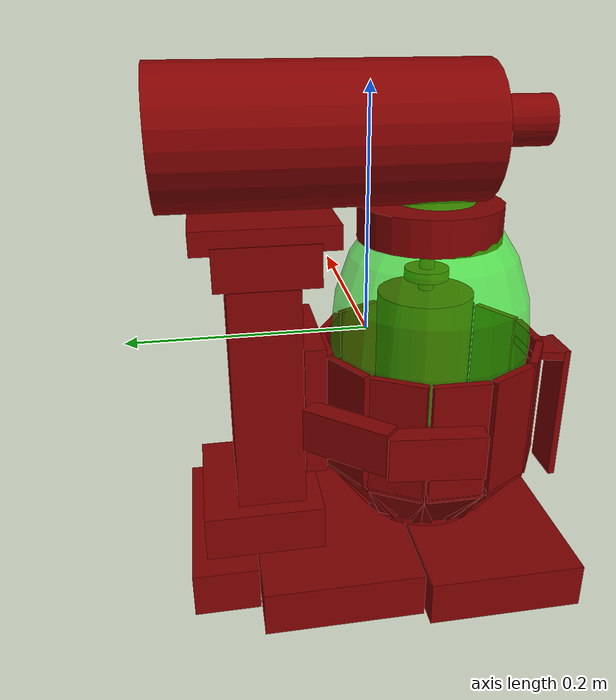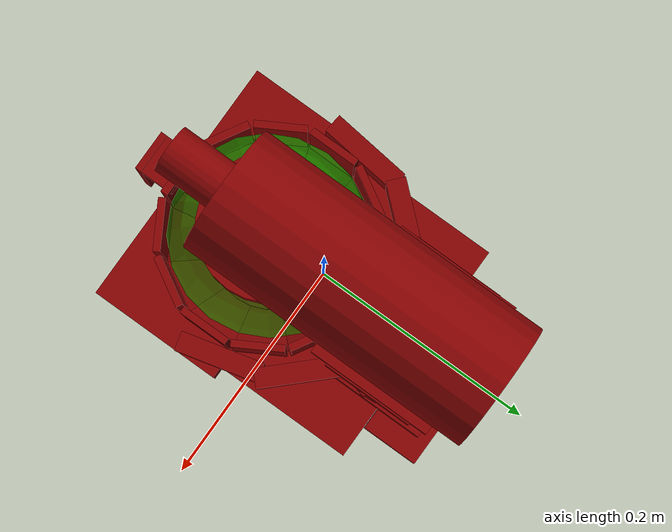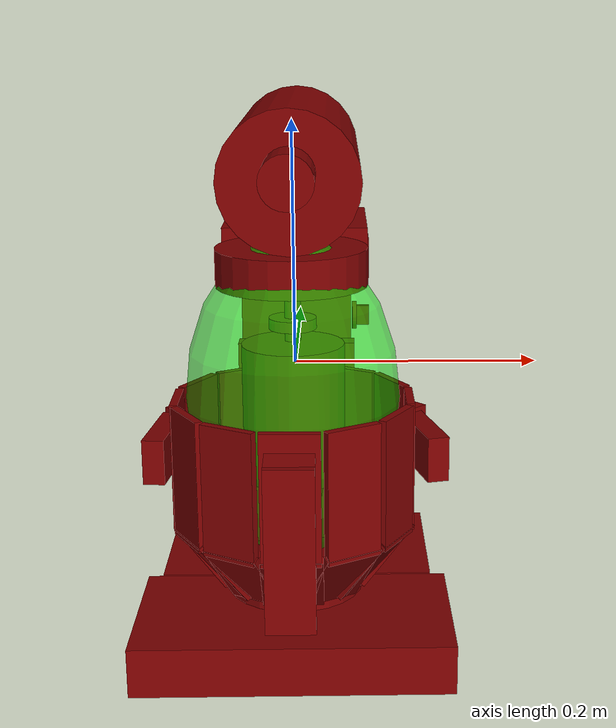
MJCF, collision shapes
<?xml version='1.0' encoding='UTF-8'?>
<mujoco model="model">
  <option timestep="0.002" gravity="0.0 0.0 -9.81"/>
  <compiler angle="radian"/>
  <asset>
    <mesh file="visuals/blender.obj" name="blender_vis"/>
    <mesh file="visuals/bowl.obj" name="bowl_vis"/>
    <mesh file="visuals/button_head_lock.obj" name="button_head_lock_vis"/>
    <mesh file="visuals/head.obj" name="head_vis"/>
    <mesh file="visuals/knob_speed.obj" name="knob_speed_vis"/>
    <mesh file="visuals/Body001.obj" name="Body001_vis"/>
    <texture file="visuals/T_BC001.png" name="Body001_material" type="2d"/>
    <material name="Body001_material" rgba="1 1 1 1.0" texture="Body001_material" shininess="0.4472135901451111" specular="1"/>
    <texture file="visuals/T_BC001.png" name="bowl_material" type="2d"/>
    <material name="bowl_material" rgba="1 1 1 1.0" texture="bowl_material" shininess="0.4472135901451111" specular="3"/>
    <texture file="visuals/T_BC001.png" name="button_head_lock_material" type="2d"/>
    <material name="button_head_lock_material" rgba="1 1 1 1.0" texture="button_head_lock_material" shininess="0.4472135901451111" specular="0.3103448502657381"/>
    <texture file="visuals/T_BC001.png" name="head_material" type="2d"/>
    <material name="head_material" rgba="1 1 1 1.0" texture="head_material" shininess="0.4472135901451111" specular="1"/>
    <texture file="visuals/T_BC001.png" name="blender_material" type="2d"/>
    <material name="blender_material" rgba="1 1 1 1.0" texture="blender_material" shininess="0.4472135901451111" specular="3"/>
    <texture file="visuals/T_BC001.png" name="knob_speed_material" type="2d"/>
    <material name="knob_speed_material" rgba="1 1 1 1.0" texture="knob_speed_material" shininess="0.4472135901451111" specular="0.3103448502657381"/>
  </asset>
  <default>
    <default class="visual">
      <geom conaffinity="0" contype="0" group="1" type="mesh"/>
    </default>
    <default class="collision">
      <geom group="0" rgba="0.5 0 0 0.5"/>
    </default>
    <default class="spawn">
      <geom group="0" rgba="1 1 1 0.5" contype="0" conaffinity="0"/>
      <site group="0" rgba="1 1 1 0.5"/>
    </default>
    <default class="region">
      <geom group="1" conaffinity="0" contype="0" rgba="0 1 0 0"/>
    </default>
  </default>
  <worldbody>
    <body>
      <body name="object">
        <geom mesh="Body001_vis" type="mesh" solimp="0.998 0.998 0.001" solref="0.001 1" friction="0.95 0.3 0.1" class="visual" material="Body001_material"/>
        <geom type="box" pos="0.00000000 -0.09774345 -0.19773351" size="0.12444791197776794 0.06564841419458389 0.019715720787644386" quat="1.0 0.0 0.0 0.0" class="collision"/>
        <geom type="box" pos="0.00000000 0.03692806 -0.19773351" size="0.11274799704551697 0.06673045456409454 0.019715720787644386" quat="1.0 0.0 0.0 0.0" class="collision"/>
        <geom type="box" pos="0.00000000 0.13221318 -0.19773351" size="0.08129703253507614 0.02755354344844818 0.019715720787644386" quat="1.0 0.0 0.0 0.0" class="collision"/>
        <geom type="box" pos="0.00000000 0.09626705 -0.15816690" size="0.0607515387237072 0.0507378876209259 0.019715720787644386" quat="1.0 0.0 0.0 0.0" class="collision"/>
        <geom type="box" pos="0.00000000 0.08876749 -0.04101869" size="0.047403931617736816 0.028754515573382378 0.09607848525047302" quat="1.0 0.0 0.0 0.0" class="collision"/>
        <geom type="box" pos="0.00000000 0.05066630 -0.05084569" size="0.05001681298017502 0.008843242190778255 0.05589098483324051" quat="1.0 0.0 0.0 0.0" class="collision"/>
        <geom type="box" pos="-0.07887462 0.02933136 -0.05926344" size="0.037609051913022995 0.008843464776873589 0.018383823335170746" quat="0.9097738265991211 0.0 0.0 0.41510432958602905" class="collision"/>
        <geom type="box" pos="-0.10710569 -0.03338044 -0.06289373" size="0.037609051913022995 0.008843463845551014 0.018383823335170746" quat="0.7446263432502747 0.0 0.0 0.667481541633606" class="collision"/>
        <geom type="box" pos="0.07755138 0.02982495 -0.05926344" size="0.037609051913022995 0.008843464776873589 0.018383823335170746" quat="0.3897849917411804 0.0 0.0 0.9209058880805969" class="collision"/>
        <geom type="box" pos="0.10614390 -0.03214647 -0.06289373" size="0.037609051913022995 0.008843464776873589 0.018383823335170746" quat="0.6137421727180481 0.0 0.0 0.7895064949989319" class="collision"/>
        <body name="bowl">
          <geom mesh="bowl_vis" type="mesh" solimp="0.998 0.998 0.001" solref="0.001 1" friction="0.95 0.3 0.1" class="visual" material="bowl_material"/>
          <geom type="cylinder" pos="-0.00006433 -0.05599070 -0.16455388" size="0.054665472358465195 0.009494337253272533" quat="1.0 0.0 0.0 0.0" class="collision"/>
          <geom type="box" pos="0.00000489 0.03485604 -0.06516086" size="0.022890442982316017 0.0032224664464592934 0.05258779600262642" quat="1.0 0.0 0.0 0.0" class="collision"/>
          <geom type="box" pos="0.00000803 0.01756145 -0.13884102" size="0.023930231109261513 0.0030119305010885 0.03303047642111778" quat="0.9473550915718079 -0.3201848864555359 7.109532661598547e-17 -3.926967335560564e-24" class="collision"/>
          <geom type="box" pos="0.04619871 0.02400079 -0.06516086" size="0.022890442982316017 0.003222322789952159 0.05258544534444809" quat="0.9659258127212524 0.0 -0.0 -0.2588191032409668" class="collision"/>
          <geom type="box" pos="0.03677442 0.00767115 -0.13884102" size="0.023930231109261513 0.0030119302682578564 0.03303048014640808" quat="0.9150747060775757 -0.3092748820781708 0.08286997675895691 -0.24519360065460205" class="collision"/>
          <geom type="box" pos="0.07999639 -0.00984756 -0.06516086" size="0.022890442982316017 0.003222322789952159 0.05258544534444809" quat="0.8660253882408142 0.0 -0.0 -0.5" class="collision"/>
          <geom type="box" pos="0.06366990 -0.01927729 -0.13884102" size="0.023930231109261513 0.0030119309667497873 0.03303048387169838" quat="0.820433497428894 -0.2772882580757141 0.16009250283241272 -0.4736776351928711" class="collision"/>
          <geom type="box" pos="0.09234187 -0.05605993 -0.06516086" size="0.0032223265152424574 0.02289145067334175 0.05258750170469284" quat="1.0 0.0 0.0 0.0" class="collision"/>
          <geom type="box" pos="0.07348783 -0.05606307 -0.13884103" size="0.023930231109261513 0.0030119300354272127 0.033030468970537186" quat="0.6698811650276184 -0.22640492022037506 0.22640492022037506 -0.6698812246322632" class="collision"/>
          <geom type="box" pos="0.07992716 -0.10225375 -0.06516086" size="0.022890441119670868 0.003222322789952159 0.05258544534444809" quat="0.4999999701976776 0.0 -0.0 -0.866025447845459" class="collision"/>
          <geom type="box" pos="0.06359753 -0.09282945 -0.13884102" size="0.023930231109261513 0.0030119307339191437 0.033030468970537186" quat="0.4736774265766144 -0.16009239852428436 0.2772882878780365 -0.8204336166381836" class="collision"/>
          <geom type="box" pos="0.04607883 -0.13605141 -0.06516086" size="0.022890441119670868 0.003222322789952159 0.05258544534444809" quat="0.2588190734386444 0.0 -0.0 -0.9659258127212524" class="collision"/>
          <geom type="box" pos="0.03664909 -0.11972493 -0.13884102" size="0.023930232971906662 0.0030119300354272127 0.033030468970537186" quat="0.24519355595111847 -0.08286994695663452 0.309274822473526 -0.9150747656822205" class="collision"/>
          <geom type="box" pos="-0.00013358 -0.14839689 -0.06516086" size="0.022890442982316017 0.003222439903765917 0.05258721858263016" quat="1.0 0.0 0.0 0.0" class="collision"/>
          <geom type="box" pos="-0.00013671 -0.12954287 -0.13884102" size="0.023930231109261513 0.0030119307339191437 0.033030468970537186" quat="1.8445685157075786e-07 -6.234228777657336e-08 -0.3201848566532135 0.9473550915718079" class="collision"/>
          <geom type="box" pos="-0.04632739 -0.13598220 -0.06516086" size="0.022890442982316017 0.003222322789952159 0.05258544534444809" quat="0.25881919264793396 0.0 0.0 0.9659258127212524" class="collision"/>
          <geom type="box" pos="-0.03690309 -0.11965256 -0.13884102" size="0.023930231109261513 0.0030119307339191437 0.033030468970537186" quat="0.24519367516040802 -0.0828699842095375 -0.3092748522758484 0.9150747060775757" class="collision"/>
          <geom type="box" pos="-0.08012505 -0.10213384 -0.06516086" size="0.022890441119670868 0.0032223230227828026 0.05258544534444809" quat="0.5000000596046448 0.0 0.0 0.8660253882408142" class="collision"/>
          <geom type="box" pos="-0.06379855 -0.09270410 -0.13884102" size="0.023930231109261513 0.0030119305010885 0.033030468970537186" quat="0.4736776053905487 -0.16009245812892914 -0.27728819847106934 0.8204335570335388" class="collision"/>
          <geom type="box" pos="-0.09247051 -0.05592148 -0.06516086" size="0.0032223265152424574 0.022891167551279068 0.05258692428469658" quat="1.0 0.0 0.0 0.0" class="collision"/>
          <geom type="box" pos="-0.07361648 -0.05591833 -0.13884102" size="0.023930231109261513 0.0030119305010885 0.03303047642111778" quat="0.6698812246322632 -0.22640486061573029 -0.22640486061573029 0.6698812246322632" class="collision"/>
          <geom type="box" pos="-0.08005579 -0.00972759 -0.06516086" size="0.022890442982316017 0.003222322789952159 0.05258544534444809" quat="0.8660256266593933 0.0 0.0 0.49999961256980896" class="collision"/>
          <geom type="box" pos="-0.06372614 -0.01915190 -0.13884102" size="0.023930231109261513 0.0030119305010885 0.03303047642111778" quat="0.8204337954521179 -0.2772882580757141 -0.160092294216156 0.4736771583557129" class="collision"/>
          <geom type="box" pos="-0.04620745 0.02407004 -0.06516086" size="0.022890442982316017 0.003222322789952159 0.05258544534444809" quat="0.9659258723258972 0.0 0.0 0.25881892442703247" class="collision"/>
          <geom type="box" pos="-0.03677772 0.00774353 -0.13884102" size="0.023930232971906662 0.0030119300354272127 0.03303048014640808" quat="0.9150746464729309 -0.3092750012874603 -0.0828700140118599 0.24519355595111847" class="collision"/>
          <geom type="box" pos="-0.00012130 -0.17930090 -0.09281836" size="0.018832150846719742 0.0029947555158287287 0.06414459645748138" quat="1.0 0.0 0.0 0.0" class="collision"/>
          <geom type="box" pos="-0.00012130 -0.16068920 -0.03169235" size="0.018832193687558174 0.003601614385843277 0.01608855649828911" quat="1.0881876733037643e-07 1.7037454824730958e-07 -0.7451668381690979 0.6668781042098999" class="collision"/>
          <geom name="reg_bowl" type="ellipsoid" pos="-0.00006433 -0.05599070 -0.01347624" size="0.08483942598104477 0.08645611256361008 0.13056087493896484" rgba="0 1 0 0.5" class="region"/>
        </body>
        <body name="button_head_lock">
          <joint axis="-0.9986295700073242 0.0 -0.0523359589278698" pos="0.05559264 0.08777523 -0.04744010" limited="true" name="button_head_lock_joint" range="0.0 0.004" type="slide" damping="1" frictionloss="1" armature=".01" stiffness="0.5" springref="-0.5"/>
          <geom mesh="button_head_lock_vis" type="mesh" solimp="0.998 0.998 0.001" solref="0.001 1" friction="0.95 0.3 0.1" class="visual" material="button_head_lock_material"/>
          <geom class="collision" type="cylinder" pos="0.05610775 0.08775933 -0.04716124" size="0.010569674894213676 0.003992168232798576" quat="0.7321696281433105 -1.0106510490688961e-13 0.681122362613678 9.151521140893237e-08" name="button_head_lock_main"/>
        </body>
        <body name="head">
          <joint axis="-1.0 0.0 0.0" pos="-0.00011057 0.12739091 0.05992162" limited="true" name="head_joint" range="0.0 1.5707963267948966" type="hinge" damping="1" frictionloss="1" armature=".01" stiffness="0.05"/>
          <geom mesh="head_vis" type="mesh" solimp="0.998 0.998 0.001" solref="0.001 1" friction="0.95 0.3 0.1" class="visual" material="head_material"/>
          <geom type="box" pos="0.00000000 0.08666642 0.07792768" size="0.06253496557474136 0.0404474101960659 0.01676778867840767" quat="1.0 0.0 0.0 0.0" class="collision"/>
          <geom type="cylinder" pos="-0.00000000 -0.05154477 0.09178909" size="0.05965748801827431 0.014811050146818161" quat="1.0 0.0 0.0 0.0" class="collision"/>
          <geom type="cylinder" pos="0.00000000 0.03623885 0.16105494" size="0.05463188886642456 0.12900060415267944" quat="0.7071068286895752 -0.7071067690849304 -1.5700924318127872e-16 5.9269340452702814e-24" class="collision"/>
          <geom type="box" pos="0.00000000 0.08666642 0.09807473" size="0.0610172301530838 0.05543158948421478 0.009290141053497791" quat="1.0 0.0 0.0 0.0" class="collision"/>
          <geom type="cylinder" pos="0.00000000 -0.11484159 0.16816461" size="0.020197732374072075 0.02965622767806053" quat="0.7071068286895752 -0.7071067690849304 -1.5700924318127872e-16 5.9269340452702814e-24" class="collision"/>
          <body name="blender">
            <joint axis="0.0 0.0 1.0" pos="0.00021186 -0.05126611 -0.02648417" limited="false" name="blender_joint" range="0 360" type="hinge" damping="1" frictionloss="1" armature=".01" stiffness="0.05"/>
            <geom mesh="blender_vis" type="mesh" solimp="0.998 0.998 0.001" solref="0.001 1" friction="0.95 0.3 0.1" class="visual" material="blender_material"/>
            <geom type="cylinder" pos="0.00021186 -0.05126611 -0.02522224" size="0.04076942801475525 0.05489890277385712" quat="1.0 0.0 0.0 0.0" class="collision"/>
            <geom type="cylinder" pos="0.00021186 -0.05126611 0.05080776" size="0.006365129258483648 0.018637439236044884" quat="1.0 0.0 0.0 0.0" class="collision"/>
            <geom type="cylinder" pos="0.00021186 -0.05126611 0.04634096" size="0.01876448094844818 0.004426607862114906" quat="1.0 0.0 0.0 0.0" class="collision"/>
          </body>
        </body>
        <body name="knob_speed">
          <joint axis="-1.0 0.0 0.0" pos="0.05353300 0.08421250 0.02017800" limited="true" name="knob_speed_joint" range="0.0 3.6651914291880923" type="hinge" damping="0.05" armature="0.001"/>
          <geom mesh="knob_speed_vis" type="mesh" solimp="0.998 0.998 0.001" solref="0.001 1" friction="0.95 0.3 0.1" class="visual" material="knob_speed_material"/>
          <geom class="collision" type="box" pos="0.05780981 0.08425831 0.02016454" size="0.0056040058843791485 0.0023768404498696327 0.008633320219814777" quat="1.0 0.0 0.0 0.0" name="knob_speed_main"/>
          <geom type="cylinder" pos="0.05060749 0.08421450 0.02014453" size="0.012157334946095943 0.0018173756543546915" quat="0.7071068286895752 -4.750302551315144e-08 0.7071067094802856 4.7503014855010406e-08" class="collision"/>
        </body>
        <geom class="region" name="reg_main" type="box" pos="0.0 0.008716349999999998 0.0" size="0.12621651 0.1737535 0.21826479000000001"/>
      </body>
    </body>
  </worldbody>
  <actuator>
    <motor name="button_head_lock_joint_actuator" joint="button_head_lock_joint" gear="0.5"/>
    <motor name="head_joint_actuator" joint="head_joint" gear="50"/>
    <motor name="knob_speed_joint_actuator" joint="knob_speed_joint" gear="10"/>
    <motor name="blender_joint_actuator" joint="blender_joint" gear="10"/>
  </actuator>
</mujoco>
